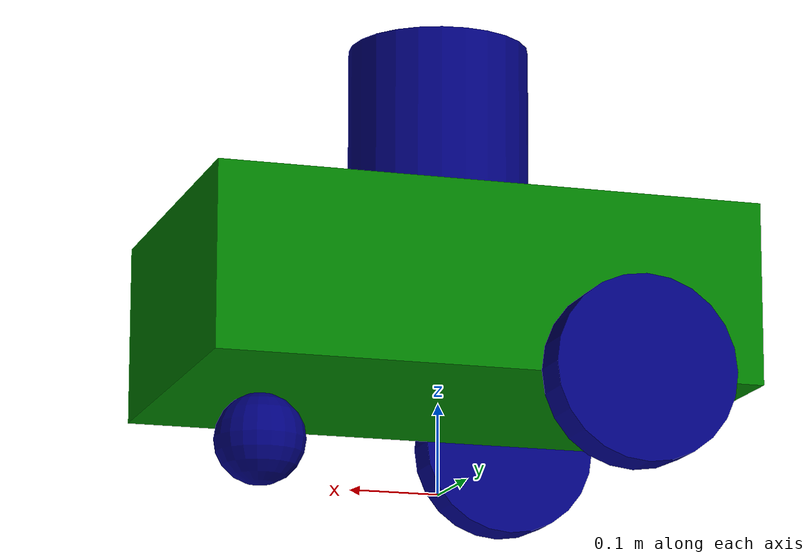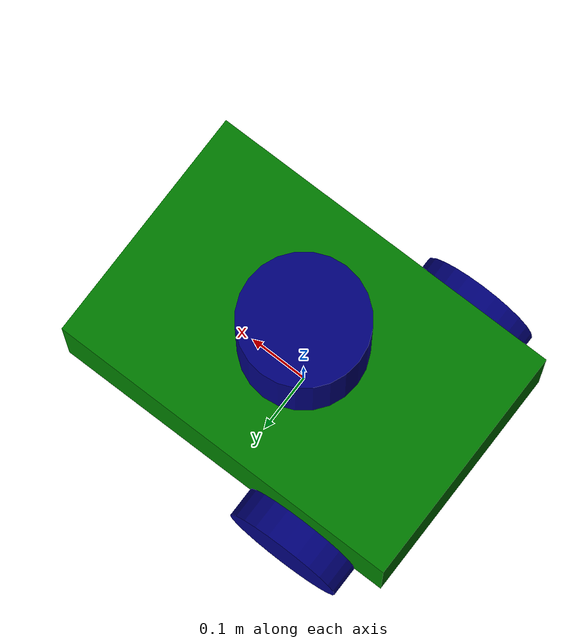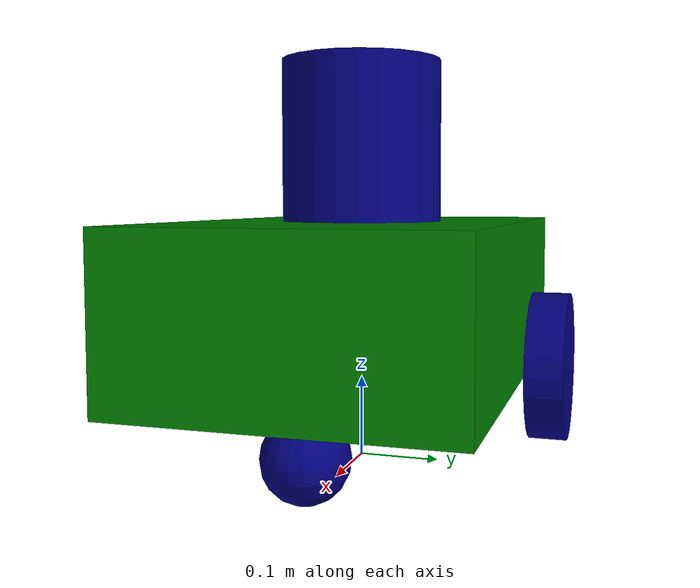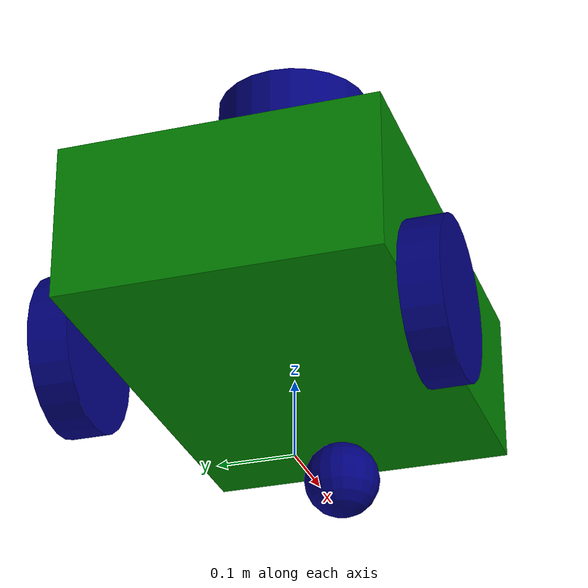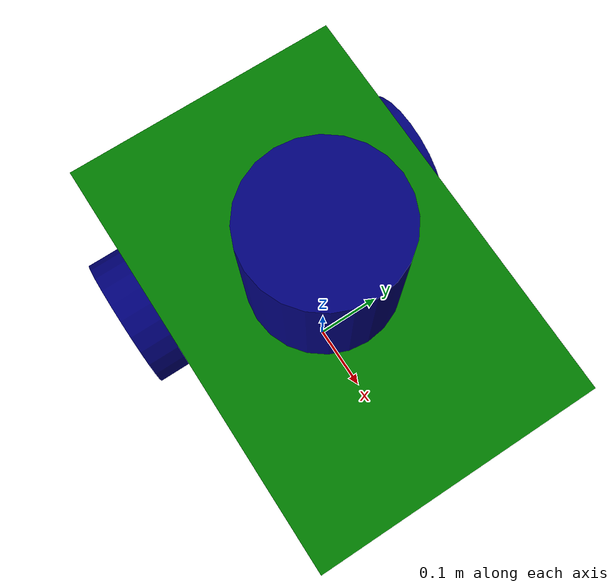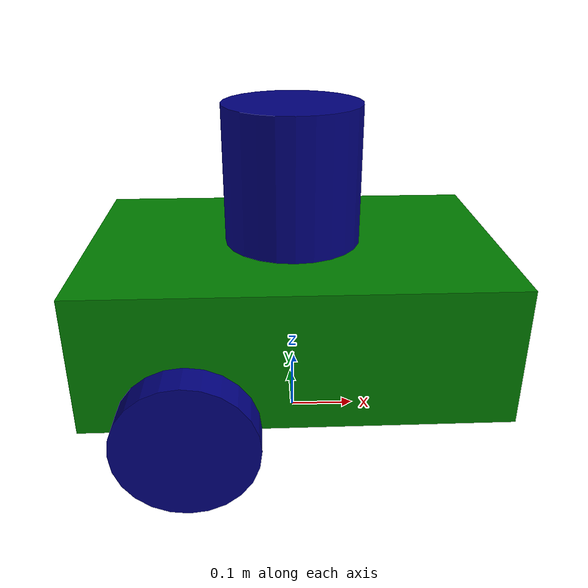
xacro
<?xml version="1.0"?>

<robot name="my_robot" xmlns:xacro="http://www.ros.org/wiki/xacro">

    <xacro:property name="base_length" value="0.6" />
    <xacro:macro name="example_macro" params="prefix radius length origin rpy material" >
        <link name="${prefix}_wheel_link">
            <visual>
                <geometry>
                    <cylinder radius="${radius}" length="${length}" />
                </geometry>
                <origin xyz="${origin}" rpy="${rpy}" />
                <material name="${material}" />
            </visual>
        </link>
        </xacro:macro>

    <material name="green">
        <color rgba="0 0.5 0 1" />
    </material>

    <material name="blue">
        <color rgba="0 0 0.5 1" />
    </material>

    <link name="base_footprint_link"/>

    <link name="base_link">
        <visual>
            <geometry>
                <box size="${base_length} 0.4 0.2" />
            </geometry>
            <origin xyz="0 0 0.1" rpy="0 0 0" />
            <material name="green" />
        </visual>
    </link>

    <link name="second_link">
        <visual>
            <geometry>
                <cylinder radius="0.1" length="0.2" />
            </geometry>
            <origin xyz="0 0 0.1" rpy="0 0 0" />
            <material name="blue" />
        </visual>
    </link>

    <link name="right_wheel_link">
        <visual>
            <geometry>
                <cylinder radius="0.1" length="0.05" />
            </geometry>
            <origin xyz="0 0 0" rpy="${pi / 2.0} 0 0" />
            <material name="blue" />
        </visual>
    </link>

    <link name="left_wheel_link">
        <visual>
            <geometry>
                <cylinder radius="0.1" length="0.05" />
            </geometry>
            <origin xyz="0 0 0" rpy="-${pi / 2.0} 0 0" />
            <material name="blue" />
        </visual>
    </link>

    <link name="caster_wheel_link">
        <visual>
            <geometry>
                <sphere radius="0.05"/>
            </geometry>
            <origin xyz="0 0 0" rpy="0 0 0" />
            <material name="blue" />
        </visual>
    </link>

    <joint name="base_footprint_base_joint" type="fixed">
        <parent link="base_footprint_link" />
        <child link="base_link" />
        <origin xyz="0 0 0.1" rpy="0 0 0" />
    </joint>

    <joint name="base_second_joint" type="revolute">
        <parent link="base_link" />
        <child link="second_link" />
        <origin xyz="0 0 0.2" rpy="0 0 0" />
        <axis xyz="0 0 1" />
        <limit lower="-1.57" upper="1.57" velocity="100" effort="100"/>
    </joint>

    <joint name="base_right_wheel_joint" type="continuous">
        <parent link="base_link" />
        <child link="right_wheel_link" />
        <origin xyz="-${base_length / 4.0} -0.225 0" rpy="0 0 0" />
        <axis xyz="0 1 0" />
    </joint>

    <joint name="base_left_wheel_joint" type="continuous">
        <parent link="base_link" />
        <child link="left_wheel_link" />
        <origin xyz="-${base_length / 4.0}  0.225 0" rpy="0 0 0" />
        <axis xyz="0 1 0" />
    </joint>

    <joint name="base_caster_wheel_joint" type="fixed">
        <parent link="base_link" />
        <child link="caster_wheel_link" />
        <origin xyz="${base_length / 3.0}  0 -0.05" rpy="0 0 0" />
    </joint>

</robot>
